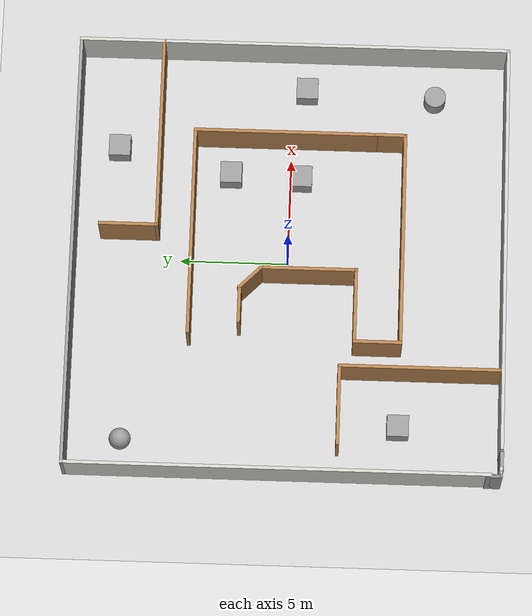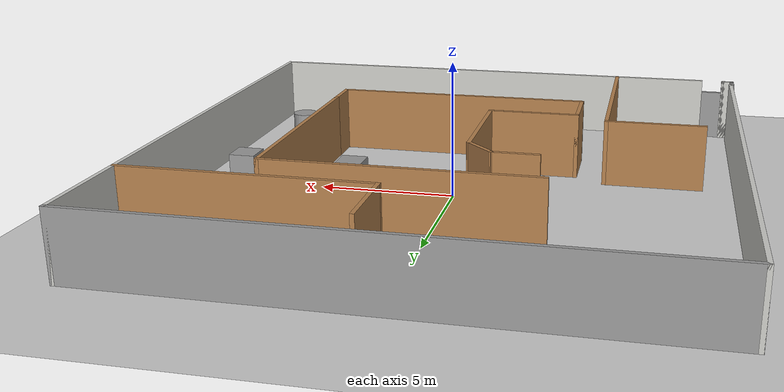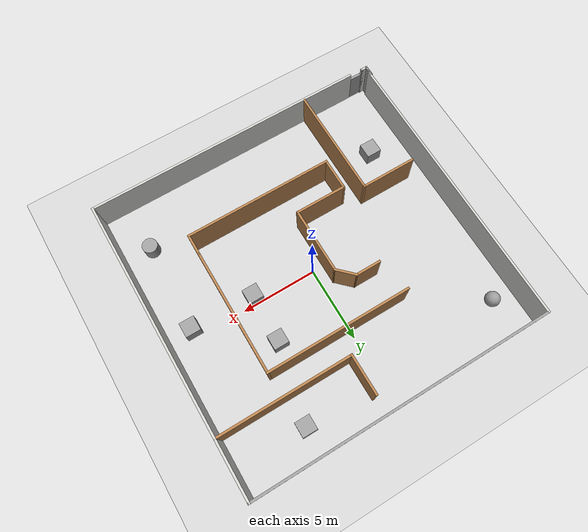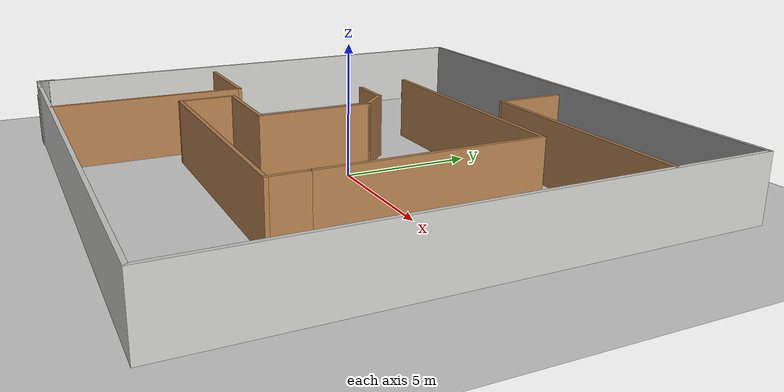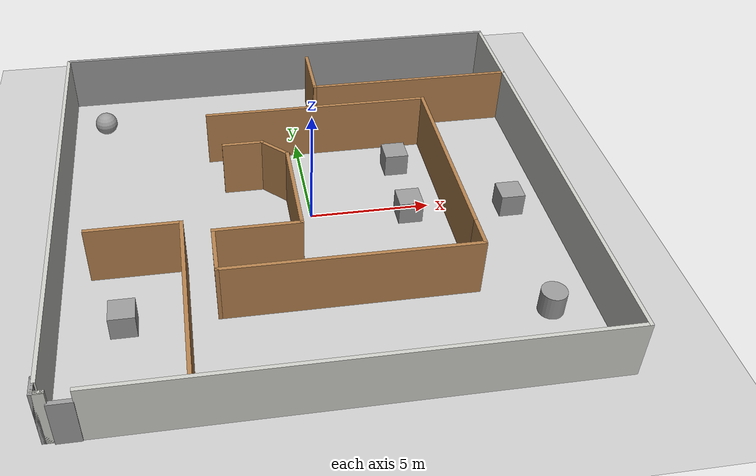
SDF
<sdf version="1.7">
 <world name="default">
  <light name="sun" type="directional">
   <pose>0 0 10 0 -0 0</pose>
   <diffuse>0.8 0.8 0.8 1</diffuse>
   <specular>0.2 0.2 0.2 1</specular>
   <attenuation>
    <range>1000</range>
    <constant>0.9</constant>
    <linear>0.01</linear>
    <quadratic>0.001</quadratic>
   </attenuation>
   <direction>-0.5 0.1 -0.9</direction>
   <spot><inner_angle>0</inner_angle><outer_angle>0</outer_angle><falloff>0</falloff></spot>
  </light>
  <model name="ground_plane">
   <static>1</static>
   <link name="link">
    <collision name="collision">
     <geometry><plane><normal>0 0 1</normal><size>100 100</size></plane></geometry>
     <surface>
      <contact><collide_bitmask>65535</collide_bitmask></contact>
      <friction><ode><mu>100</mu><mu2>50</mu2></ode></friction>
     </surface>
    </collision>
    <visual name="visual">
     <cast_shadows>0</cast_shadows>
     <geometry><plane><normal>0 0 1</normal><size>100 100</size></plane></geometry>
     <material>
      <script><uri>file://media/materials/scripts/gazebo.material</uri><name>Gazebo/Grey</name></script>
     </material>
    </visual>
   </link>
  </model>
  <gravity>0 0 -9.8</gravity>
  <magnetic_field>6e-06 2.3e-05 -4.2e-05</magnetic_field>
  <atmosphere type="adiabatic"/>
  <physics type="ode">
   <max_step_size>0.001</max_step_size>
   <real_time_factor>1</real_time_factor>
   <real_time_update_rate>1000</real_time_update_rate>
  </physics>
  <scene><ambient>0.4 0.4 0.4 1</ambient><background>0.7 0.7 0.7 1</background><shadows>1</shadows></scene>
  <spherical_coordinates>
   <surface_model>EARTH_WGS84</surface_model>
   <latitude_deg>0</latitude_deg>
   <longitude_deg>0</longitude_deg>
   <elevation>0</elevation>
   <heading_deg>0</heading_deg>
  </spherical_coordinates>
  <model name="House_Model">
   <pose>-0.145244 -0.009563 0 0 -0 0</pose>
   <link name="Door_0">
    <collision name="Door_0_Collision">
     <geometry><box><size>0.9 0.17 2</size></box></geometry>
     <pose>0 0 1 0 -0 0</pose>
    </collision>
    <visual name="Door_0_Visual">
     <pose>0 0 1 0 -0 0</pose>
     <geometry><box><size>0.9 0.17 2</size></box></geometry>
     <material>
      <script><uri>file://media/materials/scripts/gazebo.material</uri><name>Gazebo/Grey</name></script>
     </material>
    </visual>
    <pose>-9.27136 -9.95175 0 0 -0 0</pose>
   </link>
   <link name="Wall_10">
    <collision name="Wall_10_Collision">
     <geometry><box><size>20 0.15 2.5</size></box></geometry>
     <pose>0 0 1.25 0 -0 0</pose>
    </collision>
    <visual name="Wall_10_Visual">
     <pose>0 0 1.25 0 -0 0</pose>
     <geometry><box><size>20 0.15 2.5</size></box></geometry>
     <material>
      <script><uri>file://media/materials/scripts/gazebo.material</uri><name>Gazebo/CeilingTiled</name></script>
      <ambient>1 1 1 1</ambient>
     </material>
     <meta><layer>0</layer></meta>
    </visual>
    <pose>10.0785 -0 0 0 -0 -1.5708</pose>
   </link>
   <link name="Wall_11">
    <collision name="Wall_11_Collision">
     <geometry><box><size>19 0.15 2.5</size></box></geometry>
     <pose>0 0 1.25 0 -0 0</pose>
    </collision>
    <visual name="Wall_11_Visual">
     <pose>0 0 1.25 0 -0 0</pose>
     <geometry><box><size>19 0.15 2.5</size></box></geometry>
     <material>
      <script><uri>file://media/materials/scripts/gazebo.material</uri><name>Gazebo/CeilingTiled</name></script>
      <ambient>1 1 1 1</ambient>
     </material>
     <meta><layer>0</layer></meta>
    </visual>
    <pose>0.653454 -9.925 0 0 -0 3.14159</pose>
   </link>
   <link name="Wall_15">
    <collision name="Wall_15_Collision">
     <geometry><box><size>0.75 0.15 2.5</size></box></geometry>
     <pose>0 0 1.25 0 -0 0</pose>
    </collision>
    <visual name="Wall_15_Visual">
     <pose>0 0 1.25 0 -0 0</pose>
     <geometry><box><size>0.75 0.15 2.5</size></box></geometry>
     <material>
      <script><uri>file://media/materials/scripts/gazebo.material</uri><name>Gazebo/Grey</name></script>
      <ambient>1 1 1 1</ambient>
     </material>
     <meta><layer>0</layer></meta>
    </visual>
    <pose>-10.0785 -9.59794 0 0 -0 1.5708</pose>
   </link>
   <link name="Wall_17">
    <collision name="Wall_17_Collision">
     <geometry><box><size>0.75 0.15 2.5</size></box></geometry>
     <pose>0 0 1.25 0 -0 0</pose>
    </collision>
    <visual name="Wall_17_Visual">
     <pose>0 0 1.25 0 -0 0</pose>
     <geometry><box><size>0.75 0.15 2.5</size></box></geometry>
     <material>
      <script><uri>file://media/materials/scripts/gazebo.material</uri><name>Gazebo/Grey</name></script>
      <ambient>1 1 1 1</ambient>
     </material>
     <meta><layer>0</layer></meta>
    </visual>
    <pose>-10.0785 -9.59794 0 0 -0 -1.5708</pose>
   </link>
   <link name="Wall_18">
    <collision name="Wall_18_Collision">
     <geometry><box><size>0.5 0.15 2.5</size></box></geometry>
     <pose>0 0 1.25 0 -0 0</pose>
    </collision>
    <visual name="Wall_18_Visual">
     <pose>0 0 1.25 0 -0 0</pose>
     <geometry><box><size>0.5 0.15 2.5</size></box></geometry>
     <material>
      <script><uri>file://media/materials/scripts/gazebo.material</uri><name>Gazebo/CeilingTiled</name></script>
      <ambient>1 1 1 1</ambient>
     </material>
     <meta><layer>0</layer></meta>
    </visual>
    <pose>-9.90345 -9.89794 0 0 -0 0</pose>
   </link>
   <link name="Wall_19">
    <collision name="Wall_19_Collision">
     <geometry><box><size>0.5 0.15 2.5</size></box></geometry>
     <pose>0 0 1.25 0 -0 0</pose>
    </collision>
    <visual name="Wall_19_Visual">
     <pose>0 0 1.25 0 -0 0</pose>
     <geometry><box><size>0.5 0.15 2.5</size></box></geometry>
     <material>
      <script><uri>file://media/materials/scripts/gazebo.material</uri><name>Gazebo/CeilingTiled</name></script>
      <ambient>1 1 1 1</ambient>
     </material>
     <meta><layer>0</layer></meta>
    </visual>
    <pose>-9.90345 -9.89794 0 0 -0 3.14159</pose>
   </link>
   <link name="Wall_23">
    <collision name="Wall_23_Collision">
     <geometry><box><size>7.5 0.15 2.5</size></box></geometry>
     <pose>0 0 1.25 0 -0 0</pose>
    </collision>
    <visual name="Wall_23_Visual">
     <pose>0 0 1.25 0 -0 0</pose>
     <geometry><box><size>7.5 0.15 2.5</size></box></geometry>
     <material>
      <script><uri>file://media/materials/scripts/gazebo.material</uri><name>Gazebo/Wood</name></script>
      <ambient>1 1 1 1</ambient>
     </material>
     <meta><layer>0</layer></meta>
    </visual>
    <pose>-5.18208 -6.16914 0 0 -0 1.5708</pose>
   </link>
   <link name="Wall_24">
    <collision name="Wall_24_Collision">
     <geometry><box><size>3.75 0.15 2.5</size></box></geometry>
     <pose>0 0 1.25 0 -0 0</pose>
    </collision>
    <visual name="Wall_24_Visual">
     <pose>0 0 1.25 0 -0 0</pose>
     <geometry><box><size>3.75 0.15 2.5</size></box></geometry>
     <material>
      <script><uri>file://media/materials/scripts/gazebo.material</uri><name>Gazebo/Wood</name></script>
      <ambient>1 1 1 1</ambient>
     </material>
     <meta><layer>0</layer></meta>
    </visual>
    <pose>-6.98208 -2.49414 0 0 -0 3.14159</pose>
   </link>
   <link name="Wall_26">
    <collision name="Wall_26_Collision">
     <geometry><box><size>9 0.15 2.5</size></box></geometry>
     <pose>0 0 1.25 0 -0 0</pose>
    </collision>
    <visual name="Wall_26_Visual">
     <pose>0 0 1.25 0 -0 0</pose>
     <geometry><box><size>9 0.15 2.5</size></box></geometry>
     <material>
      <script><uri>file://media/materials/scripts/gazebo.material</uri><name>Gazebo/Wood</name></script>
      <ambient>1 1 1 1</ambient>
     </material>
     <meta><layer>0</layer></meta>
    </visual>
    <pose>5.62011 6.08253 0 0 -0 3.14159</pose>
   </link>
   <link name="Wall_27">
    <collision name="Wall_27_Collision">
     <geometry><box><size>2.75 0.15 2.5</size></box></geometry>
     <pose>0 0 1.25 0 -0 0</pose>
    </collision>
    <visual name="Wall_27_Visual">
     <pose>0 0 1.25 0 -0 0</pose>
     <geometry><box><size>2.75 0.15 2.5</size></box></geometry>
     <material>
      <script><uri>file://media/materials/scripts/gazebo.material</uri><name>Gazebo/Wood</name></script>
      <ambient>1 1 1 1</ambient>
     </material>
     <meta><layer>0</layer></meta>
    </visual>
    <pose>1.19511 7.38253 0 0 -0 1.5708</pose>
   </link>
   <link name="Wall_29">
    <collision name="Wall_29_Collision">
     <geometry><box><size>9.75 0.15 2.5</size></box></geometry>
     <pose>0 0 1.25 0 -0 0</pose>
    </collision>
    <visual name="Wall_29_Visual">
     <pose>0 0 1.25 0 -0 0</pose>
     <geometry><box><size>9.75 0.15 2.5</size></box></geometry>
     <material>
      <script><uri>file://media/materials/scripts/gazebo.material</uri><name>Gazebo/Wood</name></script>
      <ambient>1 1 1 1</ambient>
     </material>
     <meta><layer>0</layer></meta>
    </visual>
    <pose>1.01688 4.46834 0 0 -0 0</pose>
   </link>
   <link name="Wall_30">
    <collision name="Wall_30_Collision">
     <geometry><box><size>8.5 0.15 2.5</size></box></geometry>
     <pose>0 0 1.25 0 -0 0</pose>
    </collision>
    <visual name="Wall_30_Visual">
     <pose>0 0 1.25 0 -0 0</pose>
     <geometry><box><size>8.5 0.15 2.5</size></box></geometry>
     <material>
      <script><uri>file://media/materials/scripts/gazebo.material</uri><name>Gazebo/Wood</name></script>
      <ambient>1 1 1 1</ambient>
     </material>
     <meta><layer>0</layer></meta>
    </visual>
    <pose>5.81688 0.293342 0 0 -0 -1.5708</pose>
   </link>
   <link name="Wall_31">
    <collision name="Wall_31_Collision">
     <geometry><box><size>1.5 0.15 2.5</size></box></geometry>
     <pose>0 0 1.25 0 -0 0</pose>
    </collision>
    <visual name="Wall_31_Visual">
     <pose>0 0 1.25 0 -0 0</pose>
     <geometry><box><size>1.5 0.15 2.5</size></box></geometry>
     <material>
      <script><uri>file://media/materials/scripts/gazebo.material</uri><name>Gazebo/Wood</name></script>
      <ambient>1 1 1 1</ambient>
     </material>
     <meta><layer>0</layer></meta>
    </visual>
    <pose>5.81688 -4.55666 0 0 -0 -1.5708</pose>
   </link>
   <link name="Wall_32">
    <collision name="Wall_32_Collision">
     <geometry><box><size>10 0.15 2.5</size></box></geometry>
     <pose>0 0 1.25 0 -0 0</pose>
    </collision>
    <visual name="Wall_32_Visual">
     <pose>0 0 1.25 0 -0 0</pose>
     <geometry><box><size>10 0.15 2.5</size></box></geometry>
     <material>
      <script><uri>file://media/materials/scripts/gazebo.material</uri><name>Gazebo/Wood</name></script>
      <ambient>1 1 1 1</ambient>
     </material>
     <meta><layer>0</layer></meta>
    </visual>
    <pose>0.891884 -5.23166 0 0 -0 3.14159</pose>
   </link>
   <link name="Wall_33">
    <collision name="Wall_33_Collision">
     <geometry><box><size>2.25 0.15 2.5</size></box></geometry>
     <pose>0 0 1.25 0 -0 0</pose>
    </collision>
    <visual name="Wall_33_Visual">
     <pose>0 0 1.25 0 -0 0</pose>
     <geometry><box><size>2.25 0.15 2.5</size></box></geometry>
     <material>
      <script><uri>file://media/materials/scripts/gazebo.material</uri><name>Gazebo/Wood</name></script>
      <ambient>1 1 1 1</ambient>
     </material>
     <meta><layer>0</layer></meta>
    </visual>
    <pose>-4.03312 -4.18166 0 0 -0 1.5708</pose>
   </link>
   <link name="Wall_34">
    <collision name="Wall_34_Collision">
     <geometry><box><size>3.5 0.15 2.5</size></box></geometry>
     <pose>0 0 1.25 0 -0 0</pose>
    </collision>
    <visual name="Wall_34_Visual">
     <pose>0 0 1.25 0 -0 0</pose>
     <geometry><box><size>3.5 0.15 2.5</size></box></geometry>
     <material>
      <script><uri>file://media/materials/scripts/gazebo.material</uri><name>Gazebo/Wood</name></script>
      <ambient>1 1 1 1</ambient>
     </material>
     <meta><layer>0</layer></meta>
    </visual>
    <pose>-2.35812 -3.13166 0 0 -0 0</pose>
   </link>
   <link name="Wall_35">
    <collision name="Wall_35_Collision">
     <geometry><box><size>4.5 0.15 2.5</size></box></geometry>
     <pose>0 0 1.25 0 -0 0</pose>
    </collision>
    <visual name="Wall_35_Visual">
     <pose>0 0 1.25 0 -0 0</pose>
     <geometry><box><size>4.5 0.15 2.5</size></box></geometry>
     <material>
      <script><uri>file://media/materials/scripts/gazebo.material</uri><name>Gazebo/Wood</name></script>
      <ambient>1 1 1 1</ambient>
     </material>
     <meta><layer>0</layer></meta>
    </visual>
    <pose>-0.683116 -0.956658 0 0 -0 1.5708</pose>
   </link>
   <link name="Wall_36">
    <collision name="Wall_36_Collision">
     <geometry><box><size>1.5 0.15 2.5</size></box></geometry>
     <pose>0 0 1.25 0 -0 0</pose>
    </collision>
    <visual name="Wall_36_Visual">
     <pose>0 0 1.25 0 -0 0</pose>
     <geometry><box><size>1.5 0.15 2.5</size></box></geometry>
     <material>
      <script><uri>file://media/materials/scripts/gazebo.material</uri><name>Gazebo/Wood</name></script>
      <ambient>1 1 1 1</ambient>
     </material>
     <meta><layer>0</layer></meta>
    </visual>
    <pose>-1.16041 1.69564 0 0 -0 2.35619</pose>
   </link>
   <link name="Wall_37">
    <collision name="Wall_37_Collision">
     <geometry><box><size>1.75 0.15 2.5</size></box></geometry>
     <pose>0 0 1.25 0 -0 0</pose>
    </collision>
    <visual name="Wall_37_Visual">
     <pose>0 0 1.25 0 -0 0</pose>
     <geometry><box><size>1.75 0.15 2.5</size></box></geometry>
     <material>
      <script><uri>file://media/materials/scripts/gazebo.material</uri><name>Gazebo/Wood</name></script>
      <ambient>1 1 1 1</ambient>
     </material>
     <meta><layer>0</layer></meta>
    </visual>
    <pose>-2.43771 2.17294 0 0 -0 3.14159</pose>
   </link>
   <link name="Wall_8">
    <collision name="Wall_8_Collision">
     <geometry><box><size>19.5 0.15 2.5</size></box></geometry>
     <pose>0 0 1.25 0 -0 0</pose>
    </collision>
    <visual name="Wall_8_Visual">
     <pose>0 0 1.25 0 -0 0</pose>
     <geometry><box><size>19.5 0.15 2.5</size></box></geometry>
     <material>
      <script><uri>file://media/materials/scripts/gazebo.material</uri><name>Gazebo/CeilingTiled</name></script>
      <ambient>1 1 1 1</ambient>
     </material>
     <meta><layer>0</layer></meta>
    </visual>
    <pose>-10.0215 0.25 0 0 -0 1.5708</pose>
   </link>
   <link name="Wall_9">
    <collision name="Wall_9_Collision">
     <geometry><box><size>20.25 0.15 2.5</size></box></geometry>
     <pose>0 0 1.25 0 -0 0</pose>
    </collision>
    <visual name="Wall_9_Visual">
     <pose>0 0 1.25 0 -0 0</pose>
     <geometry><box><size>20.25 0.15 2.5</size></box></geometry>
     <material>
      <script><uri>file://media/materials/scripts/gazebo.material</uri><name>Gazebo/Grey</name></script>
      <ambient>1 1 1 1</ambient>
     </material>
     <meta><layer>0</layer></meta>
    </visual>
    <pose>0.028454 9.925 0 0 -0 0</pose>
   </link>
   <static>1</static>
  </model>
  <model name="unit_box">
   <pose>4.11949 2.77825 0.499995 0 1e-05 0</pose>
   <link name="link">
    <inertial>
     <mass>1</mass>
     <inertia>
      <ixx>0.166667</ixx>
      <ixy>0</ixy>
      <ixz>0</ixz>
      <iyy>0.166667</iyy>
      <iyz>0</iyz>
      <izz>0.166667</izz>
     </inertia>
    </inertial>
    <collision name="collision"><geometry><box><size>1 1 1</size></box></geometry></collision>
    <visual name="visual">
     <geometry><box><size>1 1 1</size></box></geometry>
     <material>
      <script><name>Gazebo/Grey</name><uri>file://media/materials/scripts/gazebo.material</uri></script>
     </material>
    </visual>
   </link>
  </model>
  <model name="unit_sphere">
   <pose>-8.61129 7.4234 0.5 0 -0 0</pose>
   <link name="link">
    <inertial>
     <mass>1</mass>
     <inertia><ixx>0.1</ixx><ixy>0</ixy><ixz>0</ixz><iyy>0.1</iyy><iyz>0</iyz><izz>0.1</izz></inertia>
    </inertial>
    <collision name="collision"><geometry><sphere><radius>0.5</radius></sphere></geometry></collision>
    <visual name="visual">
     <geometry><sphere><radius>0.5</radius></sphere></geometry>
     <material>
      <script><name>Gazebo/Grey</name><uri>file://media/materials/scripts/gazebo.material</uri></script>
     </material>
    </visual>
   </link>
  </model>
  <model name="unit_cylinder">
   <pose>8.06857 -6.61356 0.499992 -3e-06 -4e-06 -0</pose>
   <link name="link">
    <inertial>
     <mass>1</mass>
     <inertia><ixx>0.145833</ixx><ixy>0</ixy><ixz>0</ixz><iyy>0.145833</iyy><iyz>0</iyz><izz>0.125</izz></inertia>
    </inertial>
    <collision name="collision">
     <geometry><cylinder><radius>0.5</radius><length>1</length></cylinder></geometry>
    </collision>
    <visual name="visual">
     <geometry><cylinder><radius>0.5</radius><length>1</length></cylinder></geometry>
     <material>
      <script><name>Gazebo/Grey</name><uri>file://media/materials/scripts/gazebo.material</uri></script>
     </material>
    </visual>
   </link>
  </model>
  <model name="unit_box_0">
   <pose>4.02369 -0.486427 0.499995 -1e-05 -0 -0</pose>
   <link name="link">
    <inertial>
     <mass>1</mass>
     <inertia>
      <ixx>0.166667</ixx>
      <ixy>0</ixy>
      <ixz>0</ixz>
      <iyy>0.166667</iyy>
      <iyz>0</iyz>
      <izz>0.166667</izz>
     </inertia>
    </inertial>
    <collision name="collision"><geometry><box><size>1 1 1</size></box></geometry></collision>
    <visual name="visual">
     <geometry><box><size>1 1 1</size></box></geometry>
     <material>
      <script><name>Gazebo/Grey</name><uri>file://media/materials/scripts/gazebo.material</uri></script>
     </material>
    </visual>
   </link>
  </model>
  <model name="unit_box_1">
   <pose>-7.70493 -5.24425 0.499995 0 1e-05 0</pose>
   <link name="link">
    <inertial>
     <mass>1</mass>
     <inertia>
      <ixx>0.166667</ixx>
      <ixy>0</ixy>
      <ixz>0</ixz>
      <iyy>0.166667</iyy>
      <iyz>0</iyz>
      <izz>0.166667</izz>
     </inertia>
    </inertial>
    <collision name="collision"><geometry><box><size>1 1 1</size></box></geometry></collision>
    <visual name="visual">
     <geometry><box><size>1 1 1</size></box></geometry>
     <material>
      <script><name>Gazebo/Grey</name><uri>file://media/materials/scripts/gazebo.material</uri></script>
     </material>
    </visual>
   </link>
  </model>
  <model name="unit_box_2">
   <pose>5.27903 8.00475 0.499995 -1e-05 -0 0</pose>
   <link name="link">
    <inertial>
     <mass>1</mass>
     <inertia>
      <ixx>0.166667</ixx>
      <ixy>0</ixy>
      <ixz>0</ixz>
      <iyy>0.166667</iyy>
      <iyz>0</iyz>
      <izz>0.166667</izz>
     </inertia>
    </inertial>
    <collision name="collision"><geometry><box><size>1 1 1</size></box></geometry></collision>
    <visual name="visual">
     <geometry><box><size>1 1 1</size></box></geometry>
     <material>
      <script><name>Gazebo/Grey</name><uri>file://media/materials/scripts/gazebo.material</uri></script>
     </material>
    </visual>
   </link>
  </model>
  <model name="unit_box_3">
   <pose>8.3099 -0.6428 0.5 0 -0 0</pose>
   <link name="link">
    <inertial>
     <mass>1</mass>
     <inertia>
      <ixx>0.166667</ixx>
      <ixy>0</ixy>
      <ixz>0</ixz>
      <iyy>0.166667</iyy>
      <iyz>0</iyz>
      <izz>0.166667</izz>
     </inertia>
    </inertial>
    <collision name="collision"><geometry><box><size>1 1 1</size></box></geometry></collision>
    <visual name="visual">
     <geometry><box><size>1 1 1</size></box></geometry>
     <material>
      <script><name>Gazebo/Grey</name><uri>file://media/materials/scripts/gazebo.material</uri></script>
     </material>
    </visual>
   </link>
  </model>
 </world>
</sdf>
